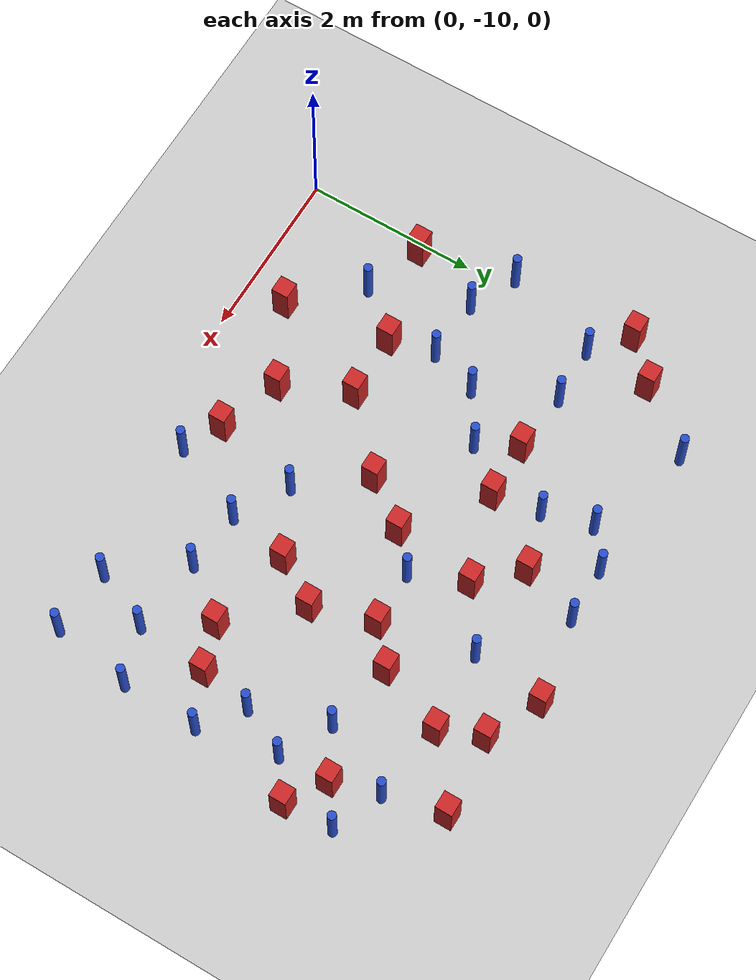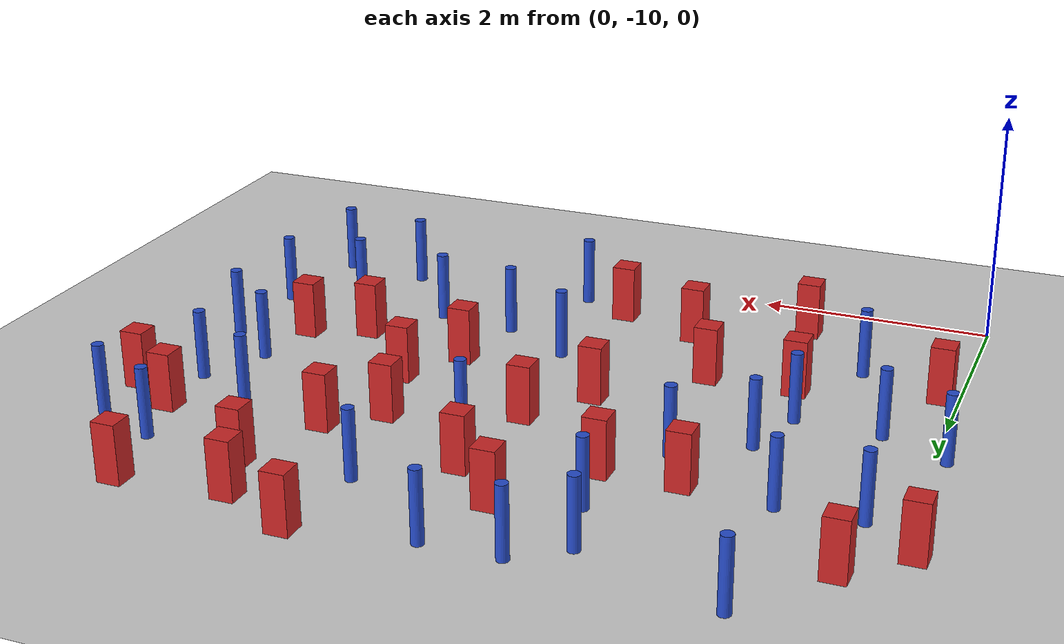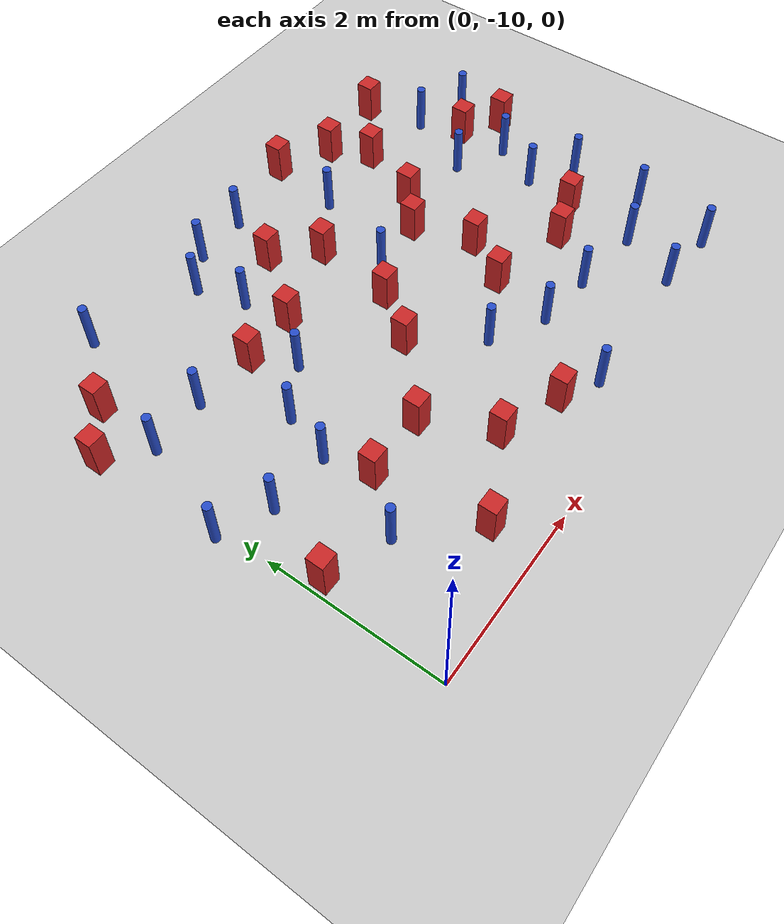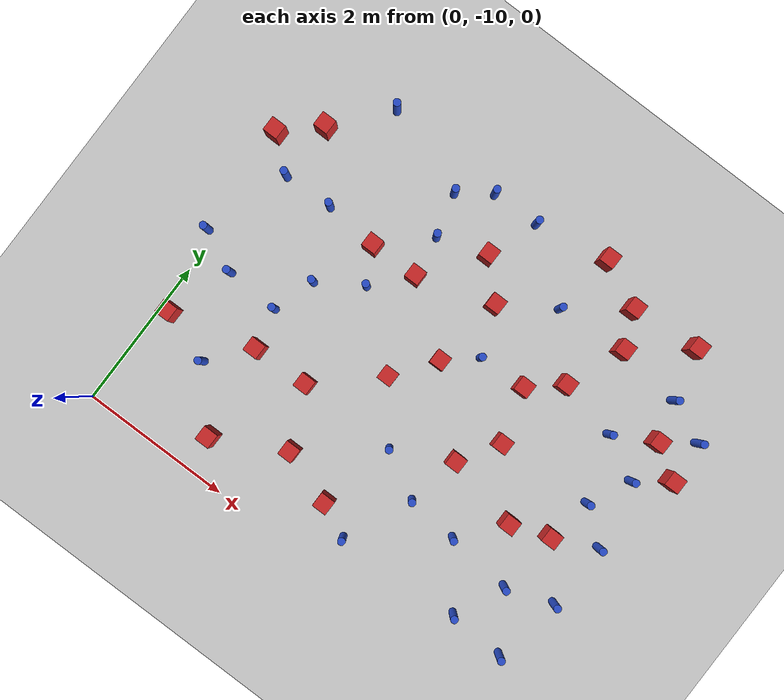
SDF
<sdf version="1.6">
 <world name="default">
  <model name="ground_plane">
   <static>1</static>
   <link name="link">
    <collision name="collision">
     <geometry><plane><normal>0 0 1</normal><size>100 100</size></plane></geometry>
     <surface><friction><ode><mu>100</mu><mu2>50</mu2></ode></friction></surface>
    </collision>
    <visual name="visual">
     <cast_shadows>0</cast_shadows>
     <geometry><plane><normal>0 0 1</normal><size>100 100</size></plane></geometry>
     <material>
      <ambient>1.0 1.0 1.0 1.0</ambient>
      <diffuse>0.8 0.8 0.8 1.0</diffuse>
      <specular>0.01 0.01 0.01 1.000000</specular>
     </material>
    </visual>
   </link>
  </model>
  <model name="pole_obstacle0">
   <static>true</static>
   <pose>3.98373473094 -5.58413356857 -9.47619616065e-06 5.49618799737e-07 2.36310414049e-07 -1.55090534808e-07</pose>
   <link name="link">
    <pose>0 0 0.3 0 -0 0</pose>
    <inertial>
     <mass>1</mass>
     <inertia><ixx>0.145833</ixx><ixy>0</ixy><ixz>0</ixz><iyy>0.145833</iyy><iyz>0</iyz><izz>0.125</izz></inertia>
    </inertial>
    <collision name="collision">
     <geometry><cylinder><radius>0.05</radius><length>.6</length></cylinder></geometry>
    </collision>
    <visual name="visual">
     <geometry><cylinder><radius>0.05</radius><length>.6</length></cylinder></geometry>
     <material>
      <script><name>Gazebo/Blue</name><uri>file://media/materials/scripts/gazebo.material</uri></script>
     </material>
    </visual>
   </link>
  </model>
  <model name="pole_obstacle1">
   <static>true</static>
   <pose>5.41597815351 -6.45563840536 -9.47619616065e-06 5.49618799737e-07 2.36310414037e-07 -1.55090534814e-07</pose>
   <link name="link">
    <pose>0 0 0.3 0 -0 0</pose>
    <inertial>
     <mass>1</mass>
     <inertia><ixx>0.145833</ixx><ixy>0</ixy><ixz>0</ixz><iyy>0.145833</iyy><iyz>0</iyz><izz>0.125</izz></inertia>
    </inertial>
    <collision name="collision">
     <geometry><cylinder><radius>0.05</radius><length>.6</length></cylinder></geometry>
    </collision>
    <visual name="visual">
     <geometry><cylinder><radius>0.05</radius><length>.6</length></cylinder></geometry>
     <material>
      <script><name>Gazebo/Blue</name><uri>file://media/materials/scripts/gazebo.material</uri></script>
     </material>
    </visual>
   </link>
  </model>
  <model name="square_post_obstacle6">
   <static>true</static>
   <pose>1.28458814506 -8.26511067671 -6.11067671241e-07 -5.50515727128e-06 -8.79689657224e-07 2.37013304536e-05</pose>
   <link name="link">
    <pose>0 0 0.25 0 -0 0</pose>
    <inertial>
     <mass>100</mass>
     <inertia>
      <ixx>0.166667</ixx>
      <ixy>0</ixy>
      <ixz>0</ixz>
      <iyy>0.166667</iyy>
      <iyz>0</iyz>
      <izz>0.166667</izz>
     </inertia>
    </inertial>
    <collision name="collision"><geometry><box><size>.2 .2 .5</size></box></geometry></collision>
    <visual name="visual">
     <geometry><box><size>.2 .2 .5</size></box></geometry>
     <material>
      <script><name>Gazebo/Red</name><uri>file://media/materials/scripts/gazebo.material</uri></script>
     </material>
    </visual>
   </link>
  </model>
  <model name="pole_obstacle5">
   <static>true</static>
   <pose>4.65320959978 -8.65904795479 -9.47619616065e-06 5.49618799737e-07 2.36310414065e-07 -1.55090534796e-07</pose>
   <link name="link">
    <pose>0 0 0.3 0 -0 0</pose>
    <inertial>
     <mass>1</mass>
     <inertia><ixx>0.145833</ixx><ixy>0</ixy><ixz>0</ixz><iyy>0.145833</iyy><iyz>0</iyz><izz>0.125</izz></inertia>
    </inertial>
    <collision name="collision">
     <geometry><cylinder><radius>0.05</radius><length>.6</length></cylinder></geometry>
    </collision>
    <visual name="visual">
     <geometry><cylinder><radius>0.05</radius><length>.6</length></cylinder></geometry>
     <material>
      <script><name>Gazebo/Blue</name><uri>file://media/materials/scripts/gazebo.material</uri></script>
     </material>
    </visual>
   </link>
  </model>
  <model name="square_post_obstacle11">
   <static>true</static>
   <pose>4.42478634536 -7.35460168713 -6.11067671241e-07 -5.50515727128e-06 -8.79689657224e-07 2.37013304536e-05</pose>
   <link name="link">
    <pose>0 0 0.25 0 -0 0</pose>
    <inertial>
     <mass>100</mass>
     <inertia>
      <ixx>0.166667</ixx>
      <ixy>0</ixy>
      <ixz>0</ixz>
      <iyy>0.166667</iyy>
      <iyz>0</iyz>
      <izz>0.166667</izz>
     </inertia>
    </inertial>
    <collision name="collision"><geometry><box><size>.2 .2 .5</size></box></geometry></collision>
    <visual name="visual">
     <geometry><box><size>.2 .2 .5</size></box></geometry>
     <material>
      <script><name>Gazebo/Red</name><uri>file://media/materials/scripts/gazebo.material</uri></script>
     </material>
    </visual>
   </link>
  </model>
  <model name="square_post_obstacle13">
   <static>true</static>
   <pose>1.65896226514 -6.36618169811 -6.11067671241e-07 -5.50515727128e-06 -8.79689657224e-07 2.37013304536e-05</pose>
   <link name="link">
    <pose>0 0 0.25 0 -0 0</pose>
    <inertial>
     <mass>100</mass>
     <inertia>
      <ixx>0.166667</ixx>
      <ixy>0</ixy>
      <ixz>0</ixz>
      <iyy>0.166667</iyy>
      <iyz>0</iyz>
      <izz>0.166667</izz>
     </inertia>
    </inertial>
    <collision name="collision"><geometry><box><size>.2 .2 .5</size></box></geometry></collision>
    <visual name="visual">
     <geometry><box><size>.2 .2 .5</size></box></geometry>
     <material>
      <script><name>Gazebo/Red</name><uri>file://media/materials/scripts/gazebo.material</uri></script>
     </material>
    </visual>
   </link>
  </model>
  <model name="pole_obstacle8">
   <static>true</static>
   <pose>0.84453395597 -8.79842746711 -9.47619616065e-06 5.49618799737e-07 2.36310414038e-07 -1.55090534813e-07</pose>
   <link name="link">
    <pose>0 0 0.3 0 -0 0</pose>
    <inertial>
     <mass>1</mass>
     <inertia><ixx>0.145833</ixx><ixy>0</ixy><ixz>0</ixz><iyy>0.145833</iyy><iyz>0</iyz><izz>0.125</izz></inertia>
    </inertial>
    <collision name="collision">
     <geometry><cylinder><radius>0.05</radius><length>.6</length></cylinder></geometry>
    </collision>
    <visual name="visual">
     <geometry><cylinder><radius>0.05</radius><length>.6</length></cylinder></geometry>
     <material>
      <script><name>Gazebo/Blue</name><uri>file://media/materials/scripts/gazebo.material</uri></script>
     </material>
    </visual>
   </link>
  </model>
  <model name="square_post_obstacle17">
   <static>true</static>
   <pose>2.30801936723 -6.34986765301 -6.11067671241e-07 -5.50515727128e-06 -8.79689657224e-07 2.37013304536e-05</pose>
   <link name="link">
    <pose>0 0 0.25 0 -0 0</pose>
    <inertial>
     <mass>100</mass>
     <inertia>
      <ixx>0.166667</ixx>
      <ixy>0</ixy>
      <ixz>0</ixz>
      <iyy>0.166667</iyy>
      <iyz>0</iyz>
      <izz>0.166667</izz>
     </inertia>
    </inertial>
    <collision name="collision"><geometry><box><size>.2 .2 .5</size></box></geometry></collision>
    <visual name="visual">
     <geometry><box><size>.2 .2 .5</size></box></geometry>
     <material>
      <script><name>Gazebo/Red</name><uri>file://media/materials/scripts/gazebo.material</uri></script>
     </material>
    </visual>
   </link>
  </model>
  <model name="pole_obstacle10">
   <static>true</static>
   <pose>0.867535812606 -4.83584433255 -9.47619616065e-06 5.49618799737e-07 2.36310414065e-07 -1.55090534796e-07</pose>
   <link name="link">
    <pose>0 0 0.3 0 -0 0</pose>
    <inertial>
     <mass>1</mass>
     <inertia><ixx>0.145833</ixx><ixy>0</ixy><ixz>0</ixz><iyy>0.145833</iyy><iyz>0</iyz><izz>0.125</izz></inertia>
    </inertial>
    <collision name="collision">
     <geometry><cylinder><radius>0.05</radius><length>.6</length></cylinder></geometry>
    </collision>
    <visual name="visual">
     <geometry><cylinder><radius>0.05</radius><length>.6</length></cylinder></geometry>
     <material>
      <script><name>Gazebo/Blue</name><uri>file://media/materials/scripts/gazebo.material</uri></script>
     </material>
    </visual>
   </link>
  </model>
  <model name="square_post_obstacle27">
   <static>true</static>
   <pose>4.91544889259 -5.51771856136 -6.11067671241e-07 -5.50515727128e-06 -8.79689657224e-07 2.37013304536e-05</pose>
   <link name="link">
    <pose>0 0 0.25 0 -0 0</pose>
    <inertial>
     <mass>100</mass>
     <inertia>
      <ixx>0.166667</ixx>
      <ixy>0</ixy>
      <ixz>0</ixz>
      <iyy>0.166667</iyy>
      <iyz>0</iyz>
      <izz>0.166667</izz>
     </inertia>
    </inertial>
    <collision name="collision"><geometry><box><size>.2 .2 .5</size></box></geometry></collision>
    <visual name="visual">
     <geometry><box><size>.2 .2 .5</size></box></geometry>
     <material>
      <script><name>Gazebo/Red</name><uri>file://media/materials/scripts/gazebo.material</uri></script>
     </material>
    </visual>
   </link>
  </model>
  <model name="pole_obstacle36">
   <static>true</static>
   <pose>6.15337293034 -8.54737704632 -9.47619616065e-06 5.49618799737e-07 2.36310414065e-07 -1.55090534796e-07</pose>
   <link name="link">
    <pose>0 0 0.3 0 -0 0</pose>
    <inertial>
     <mass>1</mass>
     <inertia><ixx>0.145833</ixx><ixy>0</ixy><ixz>0</ixz><iyy>0.145833</iyy><iyz>0</iyz><izz>0.125</izz></inertia>
    </inertial>
    <collision name="collision">
     <geometry><cylinder><radius>0.05</radius><length>.6</length></cylinder></geometry>
    </collision>
    <visual name="visual">
     <geometry><cylinder><radius>0.05</radius><length>.6</length></cylinder></geometry>
     <material>
      <script><name>Gazebo/Blue</name><uri>file://media/materials/scripts/gazebo.material</uri></script>
     </material>
    </visual>
   </link>
  </model>
  <model name="square_post_obstacle41">
   <static>true</static>
   <pose>0.146208476731 -8.55193569959 -6.11067671241e-07 -5.50515727128e-06 -8.79689657224e-07 2.37013304536e-05</pose>
   <link name="link">
    <pose>0 0 0.25 0 -0 0</pose>
    <inertial>
     <mass>100</mass>
     <inertia>
      <ixx>0.166667</ixx>
      <ixy>0</ixy>
      <ixz>0</ixz>
      <iyy>0.166667</iyy>
      <iyz>0</iyz>
      <izz>0.166667</izz>
     </inertia>
    </inertial>
    <collision name="collision"><geometry><box><size>.2 .2 .5</size></box></geometry></collision>
    <visual name="visual">
     <geometry><box><size>.2 .2 .5</size></box></geometry>
     <material>
      <script><name>Gazebo/Red</name><uri>file://media/materials/scripts/gazebo.material</uri></script>
     </material>
    </visual>
   </link>
  </model>
  <model name="pole_obstacle45">
   <static>true</static>
   <pose>0.447341268331 -7.70843139794 -9.47619616065e-06 5.49618799737e-07 2.36310414065e-07 -1.55090534796e-07</pose>
   <link name="link">
    <pose>0 0 0.3 0 -0 0</pose>
    <inertial>
     <mass>1</mass>
     <inertia><ixx>0.145833</ixx><ixy>0</ixy><ixz>0</ixz><iyy>0.145833</iyy><iyz>0</iyz><izz>0.125</izz></inertia>
    </inertial>
    <collision name="collision">
     <geometry><cylinder><radius>0.05</radius><length>.6</length></cylinder></geometry>
    </collision>
    <visual name="visual">
     <geometry><cylinder><radius>0.05</radius><length>.6</length></cylinder></geometry>
     <material>
      <script><name>Gazebo/Blue</name><uri>file://media/materials/scripts/gazebo.material</uri></script>
     </material>
    </visual>
   </link>
  </model>
  <model name="square_post_obstacle43">
   <static>true</static>
   <pose>-0.151225565375 -5.97403645779 -6.11067671241e-07 -5.50515727128e-06 -8.79689657224e-07 2.37013304536e-05</pose>
   <link name="link">
    <pose>0 0 0.25 0 -0 0</pose>
    <inertial>
     <mass>100</mass>
     <inertia>
      <ixx>0.166667</ixx>
      <ixy>0</ixy>
      <ixz>0</ixz>
      <iyy>0.166667</iyy>
      <iyz>0</iyz>
      <izz>0.166667</izz>
     </inertia>
    </inertial>
    <collision name="collision"><geometry><box><size>.2 .2 .5</size></box></geometry></collision>
    <visual name="visual">
     <geometry><box><size>.2 .2 .5</size></box></geometry>
     <material>
      <script><name>Gazebo/Red</name><uri>file://media/materials/scripts/gazebo.material</uri></script>
     </material>
    </visual>
   </link>
  </model>
  <model name="square_post_obstacle46">
   <static>true</static>
   <pose>3.11801057933 -9.26781336565 -6.11067671241e-07 -5.50515727128e-06 -8.79689657224e-07 2.37013304536e-05</pose>
   <link name="link">
    <pose>0 0 0.25 0 -0 0</pose>
    <inertial>
     <mass>100</mass>
     <inertia>
      <ixx>0.166667</ixx>
      <ixy>0</ixy>
      <ixz>0</ixz>
      <iyy>0.166667</iyy>
      <iyz>0</iyz>
      <izz>0.166667</izz>
     </inertia>
    </inertial>
    <collision name="collision"><geometry><box><size>.2 .2 .5</size></box></geometry></collision>
    <visual name="visual">
     <geometry><box><size>.2 .2 .5</size></box></geometry>
     <material>
      <script><name>Gazebo/Red</name><uri>file://media/materials/scripts/gazebo.material</uri></script>
     </material>
    </visual>
   </link>
  </model>
  <model name="pole_obstacle48">
   <static>true</static>
   <pose>6.1747708217 -7.6589957216 -9.47619616065e-06 5.49618799737e-07 2.36310414037e-07 -1.55090534814e-07</pose>
   <link name="link">
    <pose>0 0 0.3 0 -0 0</pose>
    <inertial>
     <mass>1</mass>
     <inertia><ixx>0.145833</ixx><ixy>0</ixy><ixz>0</ixz><iyy>0.145833</iyy><iyz>0</iyz><izz>0.125</izz></inertia>
    </inertial>
    <collision name="collision">
     <geometry><cylinder><radius>0.05</radius><length>.6</length></cylinder></geometry>
    </collision>
    <visual name="visual">
     <geometry><cylinder><radius>0.05</radius><length>.6</length></cylinder></geometry>
     <material>
      <script><name>Gazebo/Blue</name><uri>file://media/materials/scripts/gazebo.material</uri></script>
     </material>
    </visual>
   </link>
  </model>
  <model name="pole_obstacle58">
   <static>true</static>
   <pose>5.71772156469 -7.30422566185 -9.47619616065e-06 5.49618799737e-07 2.36310414037e-07 -1.55090534814e-07</pose>
   <link name="link">
    <pose>0 0 0.3 0 -0 0</pose>
    <inertial>
     <mass>1</mass>
     <inertia><ixx>0.145833</ixx><ixy>0</ixy><ixz>0</ixz><iyy>0.145833</iyy><iyz>0</iyz><izz>0.125</izz></inertia>
    </inertial>
    <collision name="collision">
     <geometry><cylinder><radius>0.05</radius><length>.6</length></cylinder></geometry>
    </collision>
    <visual name="visual">
     <geometry><cylinder><radius>0.05</radius><length>.6</length></cylinder></geometry>
     <material>
      <script><name>Gazebo/Blue</name><uri>file://media/materials/scripts/gazebo.material</uri></script>
     </material>
    </visual>
   </link>
  </model>
  <model name="pole_obstacle63">
   <static>true</static>
   <pose>3.5725360846 -6.66429499746 -9.47619616065e-06 5.49618799738e-07 2.3631041406e-07 -1.55090534801e-07</pose>
   <link name="link">
    <pose>0 0 0.3 0 -0 0</pose>
    <inertial>
     <mass>1</mass>
     <inertia><ixx>0.145833</ixx><ixy>0</ixy><ixz>0</ixz><iyy>0.145833</iyy><iyz>0</iyz><izz>0.125</izz></inertia>
    </inertial>
    <collision name="collision">
     <geometry><cylinder><radius>0.05</radius><length>.6</length></cylinder></geometry>
    </collision>
    <visual name="visual">
     <geometry><cylinder><radius>0.05</radius><length>.6</length></cylinder></geometry>
     <material>
      <script><name>Gazebo/Blue</name><uri>file://media/materials/scripts/gazebo.material</uri></script>
     </material>
    </visual>
   </link>
  </model>
  <model name="square_post_obstacle70">
   <static>true</static>
   <pose>0.301874885871 -5.55186013425 -6.11067671241e-07 -5.50515727128e-06 -8.79689657224e-07 2.37013304536e-05</pose>
   <link name="link">
    <pose>0 0 0.25 0 -0 0</pose>
    <inertial>
     <mass>100</mass>
     <inertia>
      <ixx>0.166667</ixx>
      <ixy>0</ixy>
      <ixz>0</ixz>
      <iyy>0.166667</iyy>
      <iyz>0</iyz>
      <izz>0.166667</izz>
     </inertia>
    </inertial>
    <collision name="collision"><geometry><box><size>.2 .2 .5</size></box></geometry></collision>
    <visual name="visual">
     <geometry><box><size>.2 .2 .5</size></box></geometry>
     <material>
      <script><name>Gazebo/Red</name><uri>file://media/materials/scripts/gazebo.material</uri></script>
     </material>
    </visual>
   </link>
  </model>
  <model name="pole_obstacle72">
   <static>true</static>
   <pose>1.16249047284 -7.73873951225 -9.47619616065e-06 5.49618799737e-07 2.36310414061e-07 -1.550905348e-07</pose>
   <link name="link">
    <pose>0 0 0.3 0 -0 0</pose>
    <inertial>
     <mass>1</mass>
     <inertia><ixx>0.145833</ixx><ixy>0</ixy><ixz>0</ixz><iyy>0.145833</iyy><iyz>0</iyz><izz>0.125</izz></inertia>
    </inertial>
    <collision name="collision">
     <geometry><cylinder><radius>0.05</radius><length>.6</length></cylinder></geometry>
    </collision>
    <visual name="visual">
     <geometry><cylinder><radius>0.05</radius><length>.6</length></cylinder></geometry>
     <material>
      <script><name>Gazebo/Blue</name><uri>file://media/materials/scripts/gazebo.material</uri></script>
     </material>
    </visual>
   </link>
  </model>
  <model name="square_post_obstacle81">
   <static>true</static>
   <pose>5.62534460677 -4.95443565347 -6.11067671241e-07 -5.50515727128e-06 -8.79689657224e-07 2.37013304536e-05</pose>
   <link name="link">
    <pose>0 0 0.25 0 -0 0</pose>
    <inertial>
     <mass>100</mass>
     <inertia>
      <ixx>0.166667</ixx>
      <ixy>0</ixy>
      <ixz>0</ixz>
      <iyy>0.166667</iyy>
      <iyz>0</iyz>
      <izz>0.166667</izz>
     </inertia>
    </inertial>
    <collision name="collision"><geometry><box><size>.2 .2 .5</size></box></geometry></collision>
    <visual name="visual">
     <geometry><box><size>.2 .2 .5</size></box></geometry>
     <material>
      <script><name>Gazebo/Red</name><uri>file://media/materials/scripts/gazebo.material</uri></script>
     </material>
    </visual>
   </link>
  </model>
  <model name="pole_obstacle88">
   <static>true</static>
   <pose>6.36343930587 -5.87541984898 -9.47619616065e-06 5.49618799737e-07 2.36310414037e-07 -1.55090534814e-07</pose>
   <link name="link">
    <pose>0 0 0.3 0 -0 0</pose>
    <inertial>
     <mass>1</mass>
     <inertia><ixx>0.145833</ixx><ixy>0</ixy><ixz>0</ixz><iyy>0.145833</iyy><iyz>0</iyz><izz>0.125</izz></inertia>
    </inertial>
    <collision name="collision">
     <geometry><cylinder><radius>0.05</radius><length>.6</length></cylinder></geometry>
    </collision>
    <visual name="visual">
     <geometry><cylinder><radius>0.05</radius><length>.6</length></cylinder></geometry>
     <material>
      <script><name>Gazebo/Blue</name><uri>file://media/materials/scripts/gazebo.material</uri></script>
     </material>
    </visual>
   </link>
  </model>
  <model name="square_post_obstacle90">
   <static>true</static>
   <pose>2.03640519145 -8.24158853918 -6.11067671241e-07 -5.50515727128e-06 -8.79689657224e-07 2.37013304536e-05</pose>
   <link name="link">
    <pose>0 0 0.25 0 -0 0</pose>
    <inertial>
     <mass>100</mass>
     <inertia>
      <ixx>0.166667</ixx>
      <ixy>0</ixy>
      <ixz>0</ixz>
      <iyy>0.166667</iyy>
      <iyz>0</iyz>
      <izz>0.166667</izz>
     </inertia>
    </inertial>
    <collision name="collision"><geometry><box><size>.2 .2 .5</size></box></geometry></collision>
    <visual name="visual">
     <geometry><box><size>.2 .2 .5</size></box></geometry>
     <material>
      <script><name>Gazebo/Red</name><uri>file://media/materials/scripts/gazebo.material</uri></script>
     </material>
    </visual>
   </link>
  </model>
  <model name="pole_obstacle104">
   <static>true</static>
   <pose>3.96627222724 -8.59401003115 -9.4761961606e-06 5.49618799729e-07 2.36310414e-07 -1.55090534824e-07</pose>
   <link name="link">
    <pose>0 0 0.3 0 -0 0</pose>
    <inertial>
     <mass>1</mass>
     <inertia><ixx>0.145833</ixx><ixy>0</ixy><ixz>0</ixz><iyy>0.145833</iyy><iyz>0</iyz><izz>0.125</izz></inertia>
    </inertial>
    <collision name="collision">
     <geometry><cylinder><radius>0.05</radius><length>.6</length></cylinder></geometry>
    </collision>
    <visual name="visual">
     <geometry><cylinder><radius>0.05</radius><length>.6</length></cylinder></geometry>
     <material>
      <script><name>Gazebo/Blue</name><uri>file://media/materials/scripts/gazebo.material</uri></script>
     </material>
    </visual>
   </link>
  </model>
  <model name="pole_obstacle109">
   <static>true</static>
   <pose>3.5669314232 -9.48941327156 -9.4761961606e-06 5.49618799729e-07 2.36310414e-07 -1.55090534824e-07</pose>
   <link name="link">
    <pose>0 0 0.3 0 -0 0</pose>
    <inertial>
     <mass>1</mass>
     <inertia><ixx>0.145833</ixx><ixy>0</ixy><ixz>0</ixz><iyy>0.145833</iyy><iyz>0</iyz><izz>0.125</izz></inertia>
    </inertial>
    <collision name="collision">
     <geometry><cylinder><radius>0.05</radius><length>.6</length></cylinder></geometry>
    </collision>
    <visual name="visual">
     <geometry><cylinder><radius>0.05</radius><length>.6</length></cylinder></geometry>
     <material>
      <script><name>Gazebo/Blue</name><uri>file://media/materials/scripts/gazebo.material</uri></script>
     </material>
    </visual>
   </link>
  </model>
  <model name="square_post_obstacle100">
   <static>true</static>
   <pose>5.95043454197 -6.16734350093 -6.11067671241e-07 -5.50515727128e-06 -8.79689657224e-07 2.37013304536e-05</pose>
   <link name="link">
    <pose>0 0 0.25 0 -0 0</pose>
    <inertial>
     <mass>100</mass>
     <inertia>
      <ixx>0.166667</ixx>
      <ixy>0</ixy>
      <ixz>0</ixz>
      <iyy>0.166667</iyy>
      <iyz>0</iyz>
      <izz>0.166667</izz>
     </inertia>
    </inertial>
    <collision name="collision"><geometry><box><size>.2 .2 .5</size></box></geometry></collision>
    <visual name="visual">
     <geometry><box><size>.2 .2 .5</size></box></geometry>
     <material>
      <script><name>Gazebo/Red</name><uri>file://media/materials/scripts/gazebo.material</uri></script>
     </material>
    </visual>
   </link>
  </model>
  <model name="pole_obstacle115">
   <static>true</static>
   <pose>-0.102988367254 -7.45180768104 -9.47619616065e-06 5.49618799737e-07 2.36310414062e-07 -1.550905348e-07</pose>
   <link name="link">
    <pose>0 0 0.3 0 -0 0</pose>
    <inertial>
     <mass>1</mass>
     <inertia><ixx>0.145833</ixx><ixy>0</ixy><ixz>0</ixz><iyy>0.145833</iyy><iyz>0</iyz><izz>0.125</izz></inertia>
    </inertial>
    <collision name="collision">
     <geometry><cylinder><radius>0.05</radius><length>.6</length></cylinder></geometry>
    </collision>
    <visual name="visual">
     <geometry><cylinder><radius>0.05</radius><length>.6</length></cylinder></geometry>
     <material>
      <script><name>Gazebo/Blue</name><uri>file://media/materials/scripts/gazebo.material</uri></script>
     </material>
    </visual>
   </link>
  </model>
  <model name="square_post_obstacle103">
   <static>true</static>
   <pose>4.21382104839 -6.63835021591 -6.11067671241e-07 -5.50515727128e-06 -8.79689657224e-07 2.37013304536e-05</pose>
   <link name="link">
    <pose>0 0 0.25 0 -0 0</pose>
    <inertial>
     <mass>100</mass>
     <inertia>
      <ixx>0.166667</ixx>
      <ixy>0</ixy>
      <ixz>0</ixz>
      <iyy>0.166667</iyy>
      <iyz>0</iyz>
      <izz>0.166667</izz>
     </inertia>
    </inertial>
    <collision name="collision"><geometry><box><size>.2 .2 .5</size></box></geometry></collision>
    <visual name="visual">
     <geometry><box><size>.2 .2 .5</size></box></geometry>
     <material>
      <script><name>Gazebo/Red</name><uri>file://media/materials/scripts/gazebo.material</uri></script>
     </material>
    </visual>
   </link>
  </model>
  <model name="pole_obstacle126">
   <static>true</static>
   <pose>1.90063445909 -6.81777747541 -9.47619616065e-06 5.49618799737e-07 2.36310414061e-07 -1.550905348e-07</pose>
   <link name="link">
    <pose>0 0 0.3 0 -0 0</pose>
    <inertial>
     <mass>1</mass>
     <inertia><ixx>0.145833</ixx><ixy>0</ixy><ixz>0</ixz><iyy>0.145833</iyy><iyz>0</iyz><izz>0.125</izz></inertia>
    </inertial>
    <collision name="collision">
     <geometry><cylinder><radius>0.05</radius><length>.6</length></cylinder></geometry>
    </collision>
    <visual name="visual">
     <geometry><cylinder><radius>0.05</radius><length>.6</length></cylinder></geometry>
     <material>
      <script><name>Gazebo/Blue</name><uri>file://media/materials/scripts/gazebo.material</uri></script>
     </material>
    </visual>
   </link>
  </model>
  <model name="pole_obstacle134">
   <static>true</static>
   <pose>1.3405839263 -7.17789647173 -9.47619616065e-06 5.49618799737e-07 2.36310414061e-07 -1.550905348e-07</pose>
   <link name="link">
    <pose>0 0 0.3 0 -0 0</pose>
    <inertial>
     <mass>1</mass>
     <inertia><ixx>0.145833</ixx><ixy>0</ixy><ixz>0</ixz><iyy>0.145833</iyy><iyz>0</iyz><izz>0.125</izz></inertia>
    </inertial>
    <collision name="collision">
     <geometry><cylinder><radius>0.05</radius><length>.6</length></cylinder></geometry>
    </collision>
    <visual name="visual">
     <geometry><cylinder><radius>0.05</radius><length>.6</length></cylinder></geometry>
     <material>
      <script><name>Gazebo/Blue</name><uri>file://media/materials/scripts/gazebo.material</uri></script>
     </material>
    </visual>
   </link>
  </model>
  <model name="square_post_obstacle121">
   <static>true</static>
   <pose>1.48210786943 -9.48955092996 -6.11067671241e-07 -5.50515727128e-06 -8.79689657224e-07 2.37013304536e-05</pose>
   <link name="link">
    <pose>0 0 0.25 0 -0 0</pose>
    <inertial>
     <mass>100</mass>
     <inertia>
      <ixx>0.166667</ixx>
      <ixy>0</ixy>
      <ixz>0</ixz>
      <iyy>0.166667</iyy>
      <iyz>0</iyz>
      <izz>0.166667</izz>
     </inertia>
    </inertial>
    <collision name="collision"><geometry><box><size>.2 .2 .5</size></box></geometry></collision>
    <visual name="visual">
     <geometry><box><size>.2 .2 .5</size></box></geometry>
     <material>
      <script><name>Gazebo/Red</name><uri>file://media/materials/scripts/gazebo.material</uri></script>
     </material>
    </visual>
   </link>
  </model>
  <model name="pole_obstacle142">
   <static>true</static>
   <pose>3.35352605791 -8.25334414147 -9.4761961606e-06 5.49618799729e-07 2.36310414e-07 -1.55090534824e-07</pose>
   <link name="link">
    <pose>0 0 0.3 0 -0 0</pose>
    <inertial>
     <mass>1</mass>
     <inertia><ixx>0.145833</ixx><ixy>0</ixy><ixz>0</ixz><iyy>0.145833</iyy><iyz>0</iyz><izz>0.125</izz></inertia>
    </inertial>
    <collision name="collision">
     <geometry><cylinder><radius>0.05</radius><length>.6</length></cylinder></geometry>
    </collision>
    <visual name="visual">
     <geometry><cylinder><radius>0.05</radius><length>.6</length></cylinder></geometry>
     <material>
      <script><name>Gazebo/Blue</name><uri>file://media/materials/scripts/gazebo.material</uri></script>
     </material>
    </visual>
   </link>
  </model>
  <model name="square_post_obstacle130">
   <static>true</static>
   <pose>6.39003620118 -6.44875990201 -6.11067671241e-07 -5.50515727128e-06 -8.79689657224e-07 2.37013304536e-05</pose>
   <link name="link">
    <pose>0 0 0.25 0 -0 0</pose>
    <inertial>
     <mass>100</mass>
     <inertia>
      <ixx>0.166667</ixx>
      <ixy>0</ixy>
      <ixz>0</ixz>
      <iyy>0.166667</iyy>
      <iyz>0</iyz>
      <izz>0.166667</izz>
     </inertia>
    </inertial>
    <collision name="collision"><geometry><box><size>.2 .2 .5</size></box></geometry></collision>
    <visual name="visual">
     <geometry><box><size>.2 .2 .5</size></box></geometry>
     <material>
      <script><name>Gazebo/Red</name><uri>file://media/materials/scripts/gazebo.material</uri></script>
     </material>
    </visual>
   </link>
  </model>
  <model name="pole_obstacle143">
   <static>true</static>
   <pose>0.274449460394 -6.32872458764 -9.47619616065e-06 5.49618799737e-07 2.36310414067e-07 -1.55090534795e-07</pose>
   <link name="link">
    <pose>0 0 0.3 0 -0 0</pose>
    <inertial>
     <mass>1</mass>
     <inertia><ixx>0.145833</ixx><ixy>0</ixy><ixz>0</ixz><iyy>0.145833</iyy><iyz>0</iyz><izz>0.125</izz></inertia>
    </inertial>
    <collision name="collision">
     <geometry><cylinder><radius>0.05</radius><length>.6</length></cylinder></geometry>
    </collision>
    <visual name="visual">
     <geometry><cylinder><radius>0.05</radius><length>.6</length></cylinder></geometry>
     <material>
      <script><name>Gazebo/Blue</name><uri>file://media/materials/scripts/gazebo.material</uri></script>
     </material>
    </visual>
   </link>
  </model>
  <model name="square_post_obstacle135">
   <static>true</static>
   <pose>3.31178359162 -6.03534948271 -6.11067671241e-07 -5.50515727128e-06 -8.79689657224e-07 2.37013304536e-05</pose>
   <link name="link">
    <pose>0 0 0.25 0 -0 0</pose>
    <inertial>
     <mass>100</mass>
     <inertia>
      <ixx>0.166667</ixx>
      <ixy>0</ixy>
      <ixz>0</ixz>
      <iyy>0.166667</iyy>
      <iyz>0</iyz>
      <izz>0.166667</izz>
     </inertia>
    </inertial>
    <collision name="collision"><geometry><box><size>.2 .2 .5</size></box></geometry></collision>
    <visual name="visual">
     <geometry><box><size>.2 .2 .5</size></box></geometry>
     <material>
      <script><name>Gazebo/Red</name><uri>file://media/materials/scripts/gazebo.material</uri></script>
     </material>
    </visual>
   </link>
  </model>
  <model name="square_post_obstacle136">
   <static>true</static>
   <pose>4.7101659233 -5.03741565899 -6.11067671241e-07 -5.50515727128e-06 -8.79689657224e-07 2.37013304536e-05</pose>
   <link name="link">
    <pose>0 0 0.25 0 -0 0</pose>
    <inertial>
     <mass>100</mass>
     <inertia>
      <ixx>0.166667</ixx>
      <ixy>0</ixy>
      <ixz>0</ixz>
      <iyy>0.166667</iyy>
      <iyz>0</iyz>
      <izz>0.166667</izz>
     </inertia>
    </inertial>
    <collision name="collision"><geometry><box><size>.2 .2 .5</size></box></geometry></collision>
    <visual name="visual">
     <geometry><box><size>.2 .2 .5</size></box></geometry>
     <material>
      <script><name>Gazebo/Red</name><uri>file://media/materials/scripts/gazebo.material</uri></script>
     </material>
    </visual>
   </link>
  </model>
  <model name="pole_obstacle146">
   <static>true</static>
   <pose>2.47675536253 -4.93436260137 -9.47619616065e-06 5.49618799738e-07 2.3631041406e-07 -1.55090534801e-07</pose>
   <link name="link">
    <pose>0 0 0.3 0 -0 0</pose>
    <inertial>
     <mass>1</mass>
     <inertia><ixx>0.145833</ixx><ixy>0</ixy><ixz>0</ixz><iyy>0.145833</iyy><iyz>0</iyz><izz>0.125</izz></inertia>
    </inertial>
    <collision name="collision">
     <geometry><cylinder><radius>0.05</radius><length>.6</length></cylinder></geometry>
    </collision>
    <visual name="visual">
     <geometry><cylinder><radius>0.05</radius><length>.6</length></cylinder></geometry>
     <material>
      <script><name>Gazebo/Blue</name><uri>file://media/materials/scripts/gazebo.material</uri></script>
     </material>
    </visual>
   </link>
  </model>
  <model name="square_post_obstacle141">
   <static>true</static>
   <pose>2.87154279076 -5.5926931236 -6.11067671241e-07 -5.50515727128e-06 -8.79689657224e-07 2.37013304536e-05</pose>
   <link name="link">
    <pose>0 0 0.25 0 -0 0</pose>
    <inertial>
     <mass>100</mass>
     <inertia>
      <ixx>0.166667</ixx>
      <ixy>0</ixy>
      <ixz>0</ixz>
      <iyy>0.166667</iyy>
      <iyz>0</iyz>
      <izz>0.166667</izz>
     </inertia>
    </inertial>
    <collision name="collision"><geometry><box><size>.2 .2 .5</size></box></geometry></collision>
    <visual name="visual">
     <geometry><box><size>.2 .2 .5</size></box></geometry>
     <material>
      <script><name>Gazebo/Red</name><uri>file://media/materials/scripts/gazebo.material</uri></script>
     </material>
    </visual>
   </link>
  </model>
  <model name="pole_obstacle153">
   <static>true</static>
   <pose>5.80050417818 -5.63402167723 -9.47619616065e-06 5.49618799737e-07 2.36310414037e-07 -1.55090534814e-07</pose>
   <link name="link">
    <pose>0 0 0.3 0 -0 0</pose>
    <inertial>
     <mass>1</mass>
     <inertia><ixx>0.145833</ixx><ixy>0</ixy><ixz>0</ixz><iyy>0.145833</iyy><iyz>0</iyz><izz>0.125</izz></inertia>
    </inertial>
    <collision name="collision">
     <geometry><cylinder><radius>0.05</radius><length>.6</length></cylinder></geometry>
    </collision>
    <visual name="visual">
     <geometry><cylinder><radius>0.05</radius><length>.6</length></cylinder></geometry>
     <material>
      <script><name>Gazebo/Blue</name><uri>file://media/materials/scripts/gazebo.material</uri></script>
     </material>
    </visual>
   </link>
  </model>
  <model name="square_post_obstacle142">
   <static>true</static>
   <pose>3.18956428481 -7.00022405358 -6.11067671241e-07 -5.50515727128e-06 -8.79689657224e-07 2.37013304536e-05</pose>
   <link name="link">
    <pose>0 0 0.25 0 -0 0</pose>
    <inertial>
     <mass>100</mass>
     <inertia>
      <ixx>0.166667</ixx>
      <ixy>0</ixy>
      <ixz>0</ixz>
      <iyy>0.166667</iyy>
      <iyz>0</iyz>
      <izz>0.166667</izz>
     </inertia>
    </inertial>
    <collision name="collision"><geometry><box><size>.2 .2 .5</size></box></geometry></collision>
    <visual name="visual">
     <geometry><box><size>.2 .2 .5</size></box></geometry>
     <material>
      <script><name>Gazebo/Red</name><uri>file://media/materials/scripts/gazebo.material</uri></script>
     </material>
    </visual>
   </link>
  </model>
  <model name="square_post_obstacle146">
   <static>true</static>
   <pose>4.08861251797 -4.74288696806 -6.11067671241e-07 -5.50515727128e-06 -8.79689657224e-07 2.37013304536e-05</pose>
   <link name="link">
    <pose>0 0 0.25 0 -0 0</pose>
    <inertial>
     <mass>100</mass>
     <inertia>
      <ixx>0.166667</ixx>
      <ixy>0</ixy>
      <ixz>0</ixz>
      <iyy>0.166667</iyy>
      <iyz>0</iyz>
      <izz>0.166667</izz>
     </inertia>
    </inertial>
    <collision name="collision"><geometry><box><size>.2 .2 .5</size></box></geometry></collision>
    <visual name="visual">
     <geometry><box><size>.2 .2 .5</size></box></geometry>
     <material>
      <script><name>Gazebo/Red</name><uri>file://media/materials/scripts/gazebo.material</uri></script>
     </material>
    </visual>
   </link>
  </model>
  <model name="square_post_obstacle153">
   <static>true</static>
   <pose>4.61193232086 -6.29320428775 -6.11067671241e-07 -5.50515727128e-06 -8.79689657224e-07 2.37013304536e-05</pose>
   <link name="link">
    <pose>0 0 0.25 0 -0 0</pose>
    <inertial>
     <mass>100</mass>
     <inertia>
      <ixx>0.166667</ixx>
      <ixy>0</ixy>
      <ixz>0</ixz>
      <iyy>0.166667</iyy>
      <iyz>0</iyz>
      <izz>0.166667</izz>
     </inertia>
    </inertial>
    <collision name="collision"><geometry><box><size>.2 .2 .5</size></box></geometry></collision>
    <visual name="visual">
     <geometry><box><size>.2 .2 .5</size></box></geometry>
     <material>
      <script><name>Gazebo/Red</name><uri>file://media/materials/scripts/gazebo.material</uri></script>
     </material>
    </visual>
   </link>
  </model>
  <model name="pole_obstacle162">
   <static>true</static>
   <pose>0.938082215132 -6.30401251786 -9.47619616065e-06 5.49618799737e-07 2.36310414065e-07 -1.55090534796e-07</pose>
   <link name="link">
    <pose>0 0 0.3 0 -0 0</pose>
    <inertial>
     <mass>1</mass>
     <inertia><ixx>0.145833</ixx><ixy>0</ixy><ixz>0</ixz><iyy>0.145833</iyy><iyz>0</iyz><izz>0.125</izz></inertia>
    </inertial>
    <collision name="collision">
     <geometry><cylinder><radius>0.05</radius><length>.6</length></cylinder></geometry>
    </collision>
    <visual name="visual">
     <geometry><cylinder><radius>0.05</radius><length>.6</length></cylinder></geometry>
     <material>
      <script><name>Gazebo/Blue</name><uri>file://media/materials/scripts/gazebo.material</uri></script>
     </material>
    </visual>
   </link>
  </model>
  <model name="pole_obstacle170">
   <static>true</static>
   <pose>5.52908611589 -8.75468307485 -9.47619616065e-06 5.49618799737e-07 2.36310414065e-07 -1.55090534796e-07</pose>
   <link name="link">
    <pose>0 0 0.3 0 -0 0</pose>
    <inertial>
     <mass>1</mass>
     <inertia><ixx>0.145833</ixx><ixy>0</ixy><ixz>0</ixz><iyy>0.145833</iyy><iyz>0</iyz><izz>0.125</izz></inertia>
    </inertial>
    <collision name="collision">
     <geometry><cylinder><radius>0.05</radius><length>.6</length></cylinder></geometry>
    </collision>
    <visual name="visual">
     <geometry><cylinder><radius>0.05</radius><length>.6</length></cylinder></geometry>
     <material>
      <script><name>Gazebo/Blue</name><uri>file://media/materials/scripts/gazebo.material</uri></script>
     </material>
    </visual>
   </link>
  </model>
  <model name="square_post_obstacle161">
   <static>true</static>
   <pose>2.3950285698 -9.01943268055 -6.11067671241e-07 -5.50515727128e-06 -8.79689657224e-07 2.37013304536e-05</pose>
   <link name="link">
    <pose>0 0 0.25 0 -0 0</pose>
    <inertial>
     <mass>100</mass>
     <inertia>
      <ixx>0.166667</ixx>
      <ixy>0</ixy>
      <ixz>0</ixz>
      <iyy>0.166667</iyy>
      <iyz>0</iyz>
      <izz>0.166667</izz>
     </inertia>
    </inertial>
    <collision name="collision"><geometry><box><size>.2 .2 .5</size></box></geometry></collision>
    <visual name="visual">
     <geometry><box><size>.2 .2 .5</size></box></geometry>
     <material>
      <script><name>Gazebo/Red</name><uri>file://media/materials/scripts/gazebo.material</uri></script>
     </material>
    </visual>
   </link>
  </model>
  <model name="pole_obstacle175">
   <static>true</static>
   <pose>2.22281054593 -5.79963156667 -9.47619616065e-06 5.49618799738e-07 2.3631041406e-07 -1.55090534801e-07</pose>
   <link name="link">
    <pose>0 0 0.3 0 -0 0</pose>
    <inertial>
     <mass>1</mass>
     <inertia><ixx>0.145833</ixx><ixy>0</ixy><ixz>0</ixz><iyy>0.145833</iyy><iyz>0</iyz><izz>0.125</izz></inertia>
    </inertial>
    <collision name="collision">
     <geometry><cylinder><radius>0.05</radius><length>.6</length></cylinder></geometry>
    </collision>
    <visual name="visual">
     <geometry><cylinder><radius>0.05</radius><length>.6</length></cylinder></geometry>
     <material>
      <script><name>Gazebo/Blue</name><uri>file://media/materials/scripts/gazebo.material</uri></script>
     </material>
    </visual>
   </link>
  </model>
  <model name="square_post_obstacle166">
   <static>true</static>
   <pose>5.09384203017 -8.08974333097 -6.11067671241e-07 -5.50515727128e-06 -8.79689657224e-07 2.37013304536e-05</pose>
   <link name="link">
    <pose>0 0 0.25 0 -0 0</pose>
    <inertial>
     <mass>100</mass>
     <inertia>
      <ixx>0.166667</ixx>
      <ixy>0</ixy>
      <ixz>0</ixz>
      <iyy>0.166667</iyy>
      <iyz>0</iyz>
      <izz>0.166667</izz>
     </inertia>
    </inertial>
    <collision name="collision"><geometry><box><size>.2 .2 .5</size></box></geometry></collision>
    <visual name="visual">
     <geometry><box><size>.2 .2 .5</size></box></geometry>
     <material>
      <script><name>Gazebo/Red</name><uri>file://media/materials/scripts/gazebo.material</uri></script>
     </material>
    </visual>
   </link>
  </model>
  <model name="pole_obstacle180">
   <static>true</static>
   <pose>3.1138695919 -4.91797026361 -9.47619616065e-06 5.49618799738e-07 2.3631041406e-07 -1.55090534801e-07</pose>
   <link name="link">
    <pose>0 0 0.3 0 -0 0</pose>
    <inertial>
     <mass>1</mass>
     <inertia><ixx>0.145833</ixx><ixy>0</ixy><ixz>0</ixz><iyy>0.145833</iyy><iyz>0</iyz><izz>0.125</izz></inertia>
    </inertial>
    <collision name="collision">
     <geometry><cylinder><radius>0.05</radius><length>.6</length></cylinder></geometry>
    </collision>
    <visual name="visual">
     <geometry><cylinder><radius>0.05</radius><length>.6</length></cylinder></geometry>
     <material>
      <script><name>Gazebo/Blue</name><uri>file://media/materials/scripts/gazebo.material</uri></script>
     </material>
    </visual>
   </link>
  </model>
  <model name="pole_obstacle184">
   <static>true</static>
   <pose>5.23614547026 -9.41218540558 -9.47619616065e-06 5.49618799737e-07 2.36310414065e-07 -1.55090534796e-07</pose>
   <link name="link">
    <pose>0 0 0.3 0 -0 0</pose>
    <inertial>
     <mass>1</mass>
     <inertia><ixx>0.145833</ixx><ixy>0</ixy><ixz>0</ixz><iyy>0.145833</iyy><iyz>0</iyz><izz>0.125</izz></inertia>
    </inertial>
    <collision name="collision">
     <geometry><cylinder><radius>0.05</radius><length>.6</length></cylinder></geometry>
    </collision>
    <visual name="visual">
     <geometry><cylinder><radius>0.05</radius><length>.6</length></cylinder></geometry>
     <material>
      <script><name>Gazebo/Blue</name><uri>file://media/materials/scripts/gazebo.material</uri></script>
     </material>
    </visual>
   </link>
  </model>
  <model name="square_post_obstacle184">
   <static>true</static>
   <pose>5.60753081348 -7.91068345937 -6.11067671241e-07 -5.50515727128e-06 -8.79689657224e-07 2.37013304536e-05</pose>
   <link name="link">
    <pose>0 0 0.25 0 -0 0</pose>
    <inertial>
     <mass>100</mass>
     <inertia>
      <ixx>0.166667</ixx>
      <ixy>0</ixy>
      <ixz>0</ixz>
      <iyy>0.166667</iyy>
      <iyz>0</iyz>
      <izz>0.166667</izz>
     </inertia>
    </inertial>
    <collision name="collision"><geometry><box><size>.2 .2 .5</size></box></geometry></collision>
    <visual name="visual">
     <geometry><box><size>.2 .2 .5</size></box></geometry>
     <material>
      <script><name>Gazebo/Red</name><uri>file://media/materials/scripts/gazebo.material</uri></script>
     </material>
    </visual>
   </link>
  </model>
  <model name="pole_obstacle198">
   <static>true</static>
   <pose>5.99714160274 -9.46807419909 -9.47619616065e-06 5.49618799737e-07 2.36310414065e-07 -1.55090534796e-07</pose>
   <link name="link">
    <pose>0 0 0.3 0 -0 0</pose>
    <inertial>
     <mass>1</mass>
     <inertia><ixx>0.145833</ixx><ixy>0</ixy><ixz>0</ixz><iyy>0.145833</iyy><iyz>0</iyz><izz>0.125</izz></inertia>
    </inertial>
    <collision name="collision">
     <geometry><cylinder><radius>0.05</radius><length>.6</length></cylinder></geometry>
    </collision>
    <visual name="visual">
     <geometry><cylinder><radius>0.05</radius><length>.6</length></cylinder></geometry>
     <material>
      <script><name>Gazebo/Blue</name><uri>file://media/materials/scripts/gazebo.material</uri></script>
     </material>
    </visual>
   </link>
  </model>
  <model name="pole_obstacle210">
   <static>true</static>
   <pose>5.98632548641 -6.75591471645 -9.47619616065e-06 5.49618799737e-07 2.36310414037e-07 -1.55090534814e-07</pose>
   <link name="link">
    <pose>0 0 0.3 0 -0 0</pose>
    <inertial>
     <mass>1</mass>
     <inertia><ixx>0.145833</ixx><ixy>0</ixy><ixz>0</ixz><iyy>0.145833</iyy><iyz>0</iyz><izz>0.125</izz></inertia>
    </inertial>
    <collision name="collision">
     <geometry><cylinder><radius>0.05</radius><length>.6</length></cylinder></geometry>
    </collision>
    <visual name="visual">
     <geometry><cylinder><radius>0.05</radius><length>.6</length></cylinder></geometry>
     <material>
      <script><name>Gazebo/Blue</name><uri>file://media/materials/scripts/gazebo.material</uri></script>
     </material>
    </visual>
   </link>
  </model>
  <model name="pole_obstacle215">
   <static>true</static>
   <pose>2.06858075643 -5.23083049003 -9.47619616065e-06 5.49618799738e-07 2.3631041406e-07 -1.55090534801e-07</pose>
   <link name="link">
    <pose>0 0 0.3 0 -0 0</pose>
    <inertial>
     <mass>1</mass>
     <inertia><ixx>0.145833</ixx><ixy>0</ixy><ixz>0</ixz><iyy>0.145833</iyy><iyz>0</iyz><izz>0.125</izz></inertia>
    </inertial>
    <collision name="collision">
     <geometry><cylinder><radius>0.05</radius><length>.6</length></cylinder></geometry>
    </collision>
    <visual name="visual">
     <geometry><cylinder><radius>0.05</radius><length>.6</length></cylinder></geometry>
     <material>
      <script><name>Gazebo/Blue</name><uri>file://media/materials/scripts/gazebo.material</uri></script>
     </material>
    </visual>
   </link>
  </model>
  <model name="square_post_obstacle208">
   <static>true</static>
   <pose>4.1018219181 -7.87738437847 -6.11067671241e-07 -5.50515727128e-06 -8.79689657224e-07 2.37013304536e-05</pose>
   <link name="link">
    <pose>0 0 0.25 0 -0 0</pose>
    <inertial>
     <mass>100</mass>
     <inertia>
      <ixx>0.166667</ixx>
      <ixy>0</ixy>
      <ixz>0</ixz>
      <iyy>0.166667</iyy>
      <iyz>0</iyz>
      <izz>0.166667</izz>
     </inertia>
    </inertial>
    <collision name="collision"><geometry><box><size>.2 .2 .5</size></box></geometry></collision>
    <visual name="visual">
     <geometry><box><size>.2 .2 .5</size></box></geometry>
     <material>
      <script><name>Gazebo/Red</name><uri>file://media/materials/scripts/gazebo.material</uri></script>
     </material>
    </visual>
   </link>
  </model>
  <model name="square_post_obstacle218">
   <static>true</static>
   <pose>2.79393920735 -7.54339007882 -6.11067671241e-07 -5.50515727128e-06 -8.79689657224e-07 2.37013304536e-05</pose>
   <link name="link">
    <pose>0 0 0.25 0 -0 0</pose>
    <inertial>
     <mass>100</mass>
     <inertia>
      <ixx>0.166667</ixx>
      <ixy>0</ixy>
      <ixz>0</ixz>
      <iyy>0.166667</iyy>
      <iyz>0</iyz>
      <izz>0.166667</izz>
     </inertia>
    </inertial>
    <collision name="collision"><geometry><box><size>.2 .2 .5</size></box></geometry></collision>
    <visual name="visual">
     <geometry><box><size>.2 .2 .5</size></box></geometry>
     <material>
      <script><name>Gazebo/Red</name><uri>file://media/materials/scripts/gazebo.material</uri></script>
     </material>
    </visual>
   </link>
  </model>
 </world>
</sdf>
